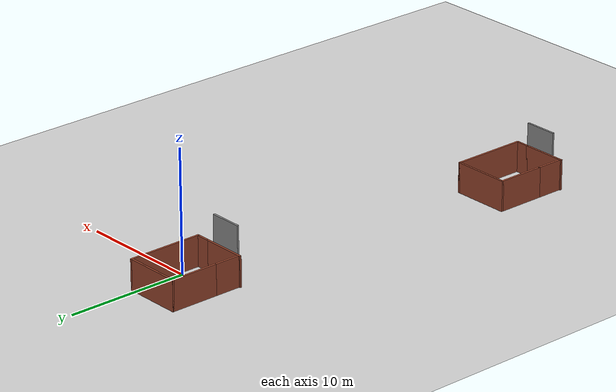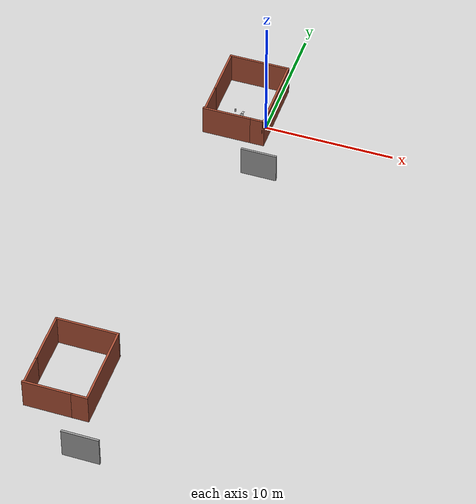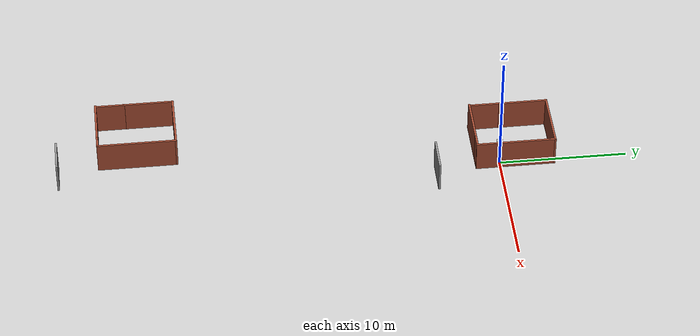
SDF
<sdf version="1.6">
 <world name="default">
  <light name="sun" type="directional">
   <pose>0 0 10 0 -0 0</pose>
   <diffuse>0.8 0.8 0.8 1</diffuse>
   <specular>0.2 0.2 0.2 1</specular>
   <attenuation>
    <range>1000</range>
    <constant>0.9</constant>
    <linear>0.01</linear>
    <quadratic>0.001</quadratic>
   </attenuation>
   <direction>-0.5 0.1 -0.9</direction>
  </light>
  <model name="ground_plane">
   <static>1</static>
   <link name="link">
    <collision name="collision">
     <geometry><plane><normal>0 0 1</normal><size>100 100</size></plane></geometry>
     <surface><friction><ode><mu>100</mu><mu2>50</mu2></ode></friction></surface>
    </collision>
    <visual name="visual">
     <cast_shadows>0</cast_shadows>
     <geometry><plane><normal>0 0 1</normal><size>100 100</size></plane></geometry>
     <material>
      <script><uri>file://media/materials/scripts/gazebo.material</uri><name>Gazebo/Grey</name></script>
     </material>
    </visual>
   </link>
  </model>
  <gravity>0 0 -10</gravity>
  <magnetic_field>6e-06 2.3e-05 -4.2e-05</magnetic_field>
  <atmosphere type="adiabatic"/>
  <physics name="default_physics" default="0" type="ode">
   <max_step_size>0.001</max_step_size>
   <real_time_factor>1</real_time_factor>
   <real_time_update_rate>1000</real_time_update_rate>
  </physics>
  <scene><ambient>0.4 0.4 0.4 1</ambient><background>0.7 0.7 0.7 1</background><shadows>1</shadows></scene>
  <audio><device>default</device></audio>
  <spherical_coordinates>
   <surface_model>EARTH_WGS84</surface_model>
   <latitude_deg>0</latitude_deg>
   <longitude_deg>0</longitude_deg>
   <elevation>0</elevation>
   <heading_deg>0</heading_deg>
  </spherical_coordinates>
  <model name="book_2">
   <link name="cover">
    <pose>0 -0.000108 0.015405 0 -0 0</pose>
    <visual name="visual">
     <geometry><box><size>0.245 0.16 0.03</size></box></geometry>
     <material>
      <script>
       <uri>model://book_2/materials/scripts</uri>
       <uri>model://book_2/materials/textures</uri>
       <name>book_2</name>
      </script>
     </material>
    </visual>
    <collision name="collision"><geometry><box><size>0.245 0.16 0.03</size></box></geometry></collision>
   </link>
   <link name="page">
    <pose>0 0.000608 0.015405 0 -0 0</pose>
    <visual name="visual">
     <geometry><box><size>0.24502 0.15862 0.028</size></box></geometry>
     <material>
      <lighting>1</lighting>
      <ambient>1 1 1 1</ambient>
      <diffuse>1 1 1 1</diffuse>
      <specular>0.01 0.01 0.01 1</specular>
      <emissive>0 0 0 1</emissive>
      <shader type="vertex"><normal_map>__default__</normal_map></shader>
     </material>
    </visual>
    <collision name="collision"><geometry><box><size>0.245 0.16 0.03</size></box></geometry></collision>
   </link>
   <static>1</static>
   <pose>-1.97635 0.411182 0.610309 -0.004085 -0.014217 1.40083</pose>
  </model>
  <model name="book_16">
   <link name="cover">
    <pose>0 -0.000108 0.015405 0 -0 0</pose>
    <visual name="visual">
     <geometry><box><size>0.245 0.16 0.03</size></box></geometry>
     <material>
      <script>
       <uri>model://book_16/materials/scripts</uri>
       <uri>model://book_16/materials/textures</uri>
       <name>book_16</name>
      </script>
     </material>
    </visual>
    <collision name="collision"><geometry><box><size>0.245 0.16 0.03</size></box></geometry></collision>
   </link>
   <link name="page">
    <pose>0 0.000608 0.015405 0 -0 0</pose>
    <visual name="visual">
     <geometry><box><size>0.24502 0.15862 0.028</size></box></geometry>
     <material>
      <lighting>1</lighting>
      <ambient>1 1 1 1</ambient>
      <diffuse>1 1 1 1</diffuse>
      <specular>0.01 0.01 0.01 1</specular>
      <emissive>0 0 0 1</emissive>
      <shader type="vertex"><normal_map>__default__</normal_map></shader>
     </material>
    </visual>
    <collision name="collision"><geometry><box><size>0.245 0.16 0.03</size></box></geometry></collision>
   </link>
   <static>1</static>
   <pose>-1.97944 0.140244 0.612635 -0.019293 -0.000342 -0.017709</pose>
  </model>
  <model name="beer">
   <link name="link">
    <pose>0 0 0.115 0 -0 0</pose>
    <inertial>
     <mass>0.39</mass>
     <inertia><ixx>0.00058</ixx><ixy>0</ixy><ixz>0</ixz><iyy>0.00058</iyy><iyz>0</iyz><izz>0.00019</izz></inertia>
    </inertial>
    <collision name="collision">
     <geometry><cylinder><radius>0.055</radius><length>0.23</length></cylinder></geometry>
    </collision>
    <visual name="visual">
     <geometry><cylinder><radius>0.055</radius><length>0.23</length></cylinder></geometry>
     <material>
      <script>
       <uri>model://beer/materials/scripts</uri>
       <uri>model://beer/materials/textures</uri>
       <name>Beer/Diffuse</name>
      </script>
     </material>
    </visual>
   </link>
   <pose>-2.5699 0.387398 0.610685 -2e-06 1.7e-05 0.015239</pose>
  </model>
  <model name="ball_bearing">
   <link name="link">
    <pose>0 0 0.003 0 -0 0</pose>
    <inertial>
     <mass>0.0011</mass>
     <inertia>
      <ixx>3.96e-09</ixx>
      <ixy>0</ixy>
      <ixz>0</ixz>
      <iyy>3.96e-09</iyy>
      <iyz>0</iyz>
      <izz>3.96e-09</izz>
     </inertia>
    </inertial>
    <collision name="collision">
     <geometry><sphere><radius>0.003</radius></sphere></geometry>
     <surface>
      <contact>
       <poissons_ratio>0.305</poissons_ratio>
       <elastic_modulus>2e+11</elastic_modulus>
       <ode><kp>100000</kp><kd>100</kd><max_vel>100</max_vel><min_depth>0.001</min_depth></ode>
      </contact>
      <friction>
       <torsional>
        <coefficient>1</coefficient>
        <use_patch_radius>0</use_patch_radius>
        <surface_radius>0.01</surface_radius>
       </torsional>
      </friction>
     </surface>
    </collision>
    <visual name="visual">
     <geometry><sphere><radius>0.003</radius></sphere></geometry>
     <material>
      <script><uri>file://media/materials/scripts/gazebo.material</uri><name>Gazebo/Grey</name></script>
     </material>
    </visual>
    <velocity_decay><linear>0</linear><angular>0.005</angular></velocity_decay>
   </link>
   <pose>-1.8564 -0.002291 -0.001 0 -0 0</pose>
  </model>
  <model name="wall">
   <pose>-3.97543 -29.7286 0 0 -0 0</pose>
   <link name="Wall_0">
    <collision name="Wall_0_Collision">
     <geometry><box><size>2.75 0.15 2.5</size></box></geometry>
     <pose>0 0 1.25 0 -0 0</pose>
    </collision>
    <visual name="Wall_0_Visual">
     <pose>0 0 1.25 0 -0 0</pose>
     <geometry><box><size>2.75 0.15 2.5</size></box></geometry>
     <material>
      <script><uri>file://media/materials/scripts/gazebo.material</uri><name>Gazebo/Grey</name></script>
      <ambient>1 1 1 1</ambient>
     </material>
     <meta><layer>0</layer></meta>
    </visual>
    <pose>2.0521 -4.6544 0 0 -0 0</pose>
   </link>
   <link name="Wall_10">
    <collision name="Wall_10_Collision">
     <geometry><box><size>2.25 0.15 2.5</size></box></geometry>
     <pose>0 0 1.25 0 -0 0</pose>
    </collision>
    <visual name="Wall_10_Visual">
     <pose>0 0 1.25 0 -0 0</pose>
     <geometry><box><size>2.25 0.15 2.5</size></box></geometry>
     <material>
      <script><uri>file://media/materials/scripts/gazebo.material</uri><name>Gazebo/Bricks</name></script>
      <ambient>1 1 1 1</ambient>
     </material>
     <meta><layer>0</layer></meta>
    </visual>
    <pose>-3.2521 -0.245601 0 0 -0 -1.5708</pose>
   </link>
   <link name="Wall_13">
    <collision name="Wall_13_Collision">
     <geometry><box><size>3.75 0.15 2.5</size></box></geometry>
     <pose>0 0 1.25 0 -0 0</pose>
    </collision>
    <visual name="Wall_13_Visual">
     <pose>0 0 1.25 0 -0 0</pose>
     <geometry><box><size>3.75 0.15 2.5</size></box></geometry>
     <material>
      <script><uri>file://media/materials/scripts/gazebo.material</uri><name>Gazebo/Bricks</name></script>
      <ambient>1 1 1 1</ambient>
     </material>
     <meta><layer>0</layer></meta>
    </visual>
    <pose>-1.5521 -1.4456 0 0 -0 3.14159</pose>
   </link>
   <link name="Wall_2">
    <collision name="Wall_2_Collision">
     <geometry><box><size>1.25 0.15 2.5</size></box></geometry>
     <pose>0 0 1.25 0 -0 0</pose>
    </collision>
    <visual name="Wall_2_Visual">
     <pose>0 0 1.25 0 -0 0</pose>
     <geometry><box><size>1.25 0.15 2.5</size></box></geometry>
     <material>
      <script><uri>file://media/materials/scripts/gazebo.material</uri><name>Gazebo/Bricks</name></script>
      <ambient>1 1 1 1</ambient>
     </material>
     <meta><layer>0</layer></meta>
    </visual>
    <pose>0.797899 -1.4456 0 0 -0 0</pose>
   </link>
   <link name="Wall_3">
    <collision name="Wall_3_Collision">
     <geometry><box><size>6.25 0.15 2.5</size></box></geometry>
     <pose>0 0 1.25 0 -0 0</pose>
    </collision>
    <visual name="Wall_3_Visual">
     <pose>0 0 1.25 0 -0 0</pose>
     <geometry><box><size>6.25 0.15 2.5</size></box></geometry>
     <material>
      <script><uri>file://media/materials/scripts/gazebo.material</uri><name>Gazebo/Bricks</name></script>
      <ambient>1 1 1 1</ambient>
     </material>
     <meta><layer>0</layer></meta>
    </visual>
    <pose>1.3479 1.6044 0 0 -0 1.5708</pose>
   </link>
   <link name="Wall_7">
    <collision name="Wall_7_Collision">
     <geometry><box><size>4.75 0.15 2.5</size></box></geometry>
     <pose>0 0 1.25 0 -0 0</pose>
    </collision>
    <visual name="Wall_7_Visual">
     <pose>0 0 1.25 0 -0 0</pose>
     <geometry><box><size>4.75 0.15 2.5</size></box></geometry>
     <material>
      <script><uri>file://media/materials/scripts/gazebo.material</uri><name>Gazebo/Bricks</name></script>
      <ambient>1 1 1 1</ambient>
     </material>
     <meta><layer>0</layer></meta>
    </visual>
    <pose>-0.952101 4.6544 0 0 -0 3.14159</pose>
   </link>
   <link name="Wall_8">
    <collision name="Wall_8_Collision">
     <geometry><box><size>4 0.15 2.5</size></box></geometry>
     <pose>0 0 1.25 0 -0 0</pose>
    </collision>
    <visual name="Wall_8_Visual">
     <pose>0 0 1.25 0 -0 0</pose>
     <geometry><box><size>4 0.15 2.5</size></box></geometry>
     <material>
      <script><uri>file://media/materials/scripts/gazebo.material</uri><name>Gazebo/Bricks</name></script>
      <ambient>1 1 1 1</ambient>
     </material>
     <meta><layer>0</layer></meta>
    </visual>
    <pose>-3.2521 2.7294 0 0 -0 -1.5708</pose>
   </link>
   <static>1</static>
  </model>
  <model name="wall_0">
   <pose>-0.967318 -0.394244 0 0 -0 0</pose>
   <link name="Wall_0">
    <collision name="Wall_0_Collision">
     <geometry><box><size>2.75 0.15 2.5</size></box></geometry>
     <pose>0 0 1.25 0 -0 0</pose>
    </collision>
    <visual name="Wall_0_Visual">
     <pose>0 0 1.25 0 -0 0</pose>
     <geometry><box><size>2.75 0.15 2.5</size></box></geometry>
     <material>
      <script><uri>file://media/materials/scripts/gazebo.material</uri><name>Gazebo/Grey</name></script>
      <ambient>1 1 1 1</ambient>
     </material>
     <meta><layer>0</layer></meta>
    </visual>
    <pose>2.0521 -4.6544 0 0 -0 0</pose>
   </link>
   <link name="Wall_10">
    <collision name="Wall_10_Collision">
     <geometry><box><size>2.25 0.15 2.5</size></box></geometry>
     <pose>0 0 1.25 0 -0 0</pose>
    </collision>
    <visual name="Wall_10_Visual">
     <pose>0 0 1.25 0 -0 0</pose>
     <geometry><box><size>2.25 0.15 2.5</size></box></geometry>
     <material>
      <script><uri>file://media/materials/scripts/gazebo.material</uri><name>Gazebo/Bricks</name></script>
      <ambient>1 1 1 1</ambient>
     </material>
     <meta><layer>0</layer></meta>
    </visual>
    <pose>-3.2521 -0.245601 0 0 -0 -1.5708</pose>
   </link>
   <link name="Wall_13">
    <collision name="Wall_13_Collision">
     <geometry><box><size>3.75 0.15 2.5</size></box></geometry>
     <pose>0 0 1.25 0 -0 0</pose>
    </collision>
    <visual name="Wall_13_Visual">
     <pose>0 0 1.25 0 -0 0</pose>
     <geometry><box><size>3.75 0.15 2.5</size></box></geometry>
     <material>
      <script><uri>file://media/materials/scripts/gazebo.material</uri><name>Gazebo/Bricks</name></script>
      <ambient>1 1 1 1</ambient>
     </material>
     <meta><layer>0</layer></meta>
    </visual>
    <pose>-1.5521 -1.4456 0 0 -0 3.14159</pose>
   </link>
   <link name="Wall_2">
    <collision name="Wall_2_Collision">
     <geometry><box><size>1.25 0.15 2.5</size></box></geometry>
     <pose>0 0 1.25 0 -0 0</pose>
    </collision>
    <visual name="Wall_2_Visual">
     <pose>0 0 1.25 0 -0 0</pose>
     <geometry><box><size>1.25 0.15 2.5</size></box></geometry>
     <material>
      <script><uri>file://media/materials/scripts/gazebo.material</uri><name>Gazebo/Bricks</name></script>
      <ambient>1 1 1 1</ambient>
     </material>
     <meta><layer>0</layer></meta>
    </visual>
    <pose>0.797899 -1.4456 0 0 -0 0</pose>
   </link>
   <link name="Wall_3">
    <collision name="Wall_3_Collision">
     <geometry><box><size>6.25 0.15 2.5</size></box></geometry>
     <pose>0 0 1.25 0 -0 0</pose>
    </collision>
    <visual name="Wall_3_Visual">
     <pose>0 0 1.25 0 -0 0</pose>
     <geometry><box><size>6.25 0.15 2.5</size></box></geometry>
     <material>
      <script><uri>file://media/materials/scripts/gazebo.material</uri><name>Gazebo/Bricks</name></script>
      <ambient>1 1 1 1</ambient>
     </material>
     <meta><layer>0</layer></meta>
    </visual>
    <pose>1.3479 1.6044 0 0 -0 1.5708</pose>
   </link>
   <link name="Wall_7">
    <collision name="Wall_7_Collision">
     <geometry><box><size>4.75 0.15 2.5</size></box></geometry>
     <pose>0 0 1.25 0 -0 0</pose>
    </collision>
    <visual name="Wall_7_Visual">
     <pose>0 0 1.25 0 -0 0</pose>
     <geometry><box><size>4.75 0.15 2.5</size></box></geometry>
     <material>
      <script><uri>file://media/materials/scripts/gazebo.material</uri><name>Gazebo/Bricks</name></script>
      <ambient>1 1 1 1</ambient>
     </material>
     <meta><layer>0</layer></meta>
    </visual>
    <pose>-0.952101 4.6544 0 0 -0 3.14159</pose>
   </link>
   <link name="Wall_8">
    <collision name="Wall_8_Collision">
     <geometry><box><size>4 0.15 2.5</size></box></geometry>
     <pose>0 0 1.25 0 -0 0</pose>
    </collision>
    <visual name="Wall_8_Visual">
     <pose>0 0 1.25 0 -0 0</pose>
     <geometry><box><size>4 0.15 2.5</size></box></geometry>
     <material>
      <script><uri>file://media/materials/scripts/gazebo.material</uri><name>Gazebo/Bricks</name></script>
      <ambient>1 1 1 1</ambient>
     </material>
     <meta><layer>0</layer></meta>
    </visual>
    <pose>-3.2521 2.7294 0 0 -0 -1.5708</pose>
   </link>
   <static>1</static>
  </model>
 </world>
</sdf>
